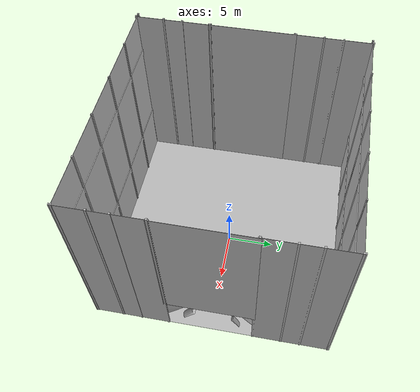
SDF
<?xml version="1.0" ?>
<sdf version="1.6">
    <model name="subt_tunnel_staging_area">
        <static>true</static>
        <link name="link">
            <collision name="collision1">
                <pose>-10 -10 20 0 0 0</pose>
                <geometry>
                    <box>
                        <size>0.1 0.1 0.1</size>
                    </box>
                </geometry>
            </collision>
            <collision name="collision2">
                <pose>10 10 20 0 0 0</pose>
                <geometry>
                    <box>
                        <size>0.1 0.1 0.1</size>
                    </box>
                </geometry>
            </collision>
            <!-- The flat area where the robots starts -->
            <visual name="plane_visual">
                <pose>-1.181716 0 0 0 0 0</pose>
                <geometry>
                    <mesh>
                        <uri>https://fuel.ignitionrobotics.org/1.0/openrobotics/models/subt_tunnel_staging_area/11/files/meshes/Asphalt_Plane.DAE</uri>
                    </mesh>
                </geometry>
            </visual>
            <visual name="fence_right1">
                <pose>8.818284 -12.4 0 1.5707 0 0</pose>
                <geometry>
                    <mesh>
                        <uri>https://fuel.ignitionrobotics.org/1.0/openrobotics/models/subt_tunnel_staging_area/11/files/meshes/Fence.dae</uri>
                        <scale>1 6.7 1</scale>
                    </mesh>
                </geometry>
            </visual>
            <visual name="fence_right2">
                <pose>3.818284 -12.4 0 1.5707 0 0</pose>
                <geometry>
                    <mesh>
                        <uri>https://fuel.ignitionrobotics.org/1.0/openrobotics/models/subt_tunnel_staging_area/11/files/meshes/Fence.dae</uri>
                        <scale>1 6.7 1</scale>
                    </mesh>
                </geometry>
            </visual>
            <visual name="fence_right3">
                <pose>-1.181716 -12.4 0 1.5707 0 0</pose>
                <geometry>
                    <mesh>
                        <uri>https://fuel.ignitionrobotics.org/1.0/openrobotics/models/subt_tunnel_staging_area/11/files/meshes/Fence.dae</uri>
                        <scale>1 6.7 1</scale>
                    </mesh>
                </geometry>
            </visual>
            <visual name="fence_right4">
                <pose>-6.181716 -12.4 0 1.5707 0 0</pose>
                <geometry>
                    <mesh>
                        <uri>https://fuel.ignitionrobotics.org/1.0/openrobotics/models/subt_tunnel_staging_area/11/files/meshes/Fence.dae</uri>
                        <scale>1 6.7 1</scale>
                    </mesh>
                </geometry>
            </visual>
            <visual name="fence_right5">
                <pose>-11.181716 -12.4 0 1.5707 0 0</pose>
                <geometry>
                    <mesh>
                        <uri>https://fuel.ignitionrobotics.org/1.0/openrobotics/models/subt_tunnel_staging_area/11/files/meshes/Fence.dae</uri>
                        <scale>1 6.7 1</scale>
                    </mesh>
                </geometry>
            </visual>
            <visual name="fence_left1">
                <pose>8.818284 12.4 0 1.5707 0 3.1415</pose>
                <geometry>
                    <mesh>
                        <uri>https://fuel.ignitionrobotics.org/1.0/openrobotics/models/subt_tunnel_staging_area/11/files/meshes/Fence.dae</uri>
                        <scale>1 6.7 1</scale>
                    </mesh>
                </geometry>
            </visual>
            <visual name="fence_left2">
                <pose>3.818284 12.4 0 1.5707 0 3.1415</pose>
                <geometry>
                    <mesh>
                        <uri>https://fuel.ignitionrobotics.org/1.0/openrobotics/models/subt_tunnel_staging_area/11/files/meshes/Fence.dae</uri>
                        <scale>1 6.7 1</scale>
                    </mesh>
                </geometry>
            </visual>
            <visual name="fence_left3">
                <pose>-1.181716 12.4 0 1.5707 0 3.1415</pose>
                <geometry>
                    <mesh>
                        <uri>https://fuel.ignitionrobotics.org/1.0/openrobotics/models/subt_tunnel_staging_area/11/files/meshes/Fence.dae</uri>
                        <scale>1 6.7 1</scale>
                    </mesh>
                </geometry>
            </visual>
            <visual name="fence_left4">
                <pose>-6.181716 12.4 0 1.5707 0 3.1415</pose>
                <geometry>
                    <mesh>
                        <uri>https://fuel.ignitionrobotics.org/1.0/openrobotics/models/subt_tunnel_staging_area/11/files/meshes/Fence.dae</uri>
                        <scale>1 6.7 1</scale>
                    </mesh>
                </geometry>
            </visual>
            <visual name="fence_left5">
                <pose>-11.181716 12.4 0 1.5707 0 3.1415</pose>
                <geometry>
                    <mesh>
                        <uri>https://fuel.ignitionrobotics.org/1.0/openrobotics/models/subt_tunnel_staging_area/11/files/meshes/Fence.dae</uri>
                        <scale>1 6.7 1</scale>
                    </mesh>
                </geometry>
            </visual>
            <visual name="fence_front_left1">
                <pose>11.3181716 10 0 1.5707 0 1.5707</pose>
                <geometry>
                    <mesh>
                        <uri>https://fuel.ignitionrobotics.org/1.0/openrobotics/models/subt_tunnel_staging_area/11/files/meshes/Fence.dae</uri>
                        <scale>1 6.7 1</scale>
                    </mesh>
                </geometry>
            </visual>
            <visual name="fence_front_left2">
                <pose>11.3181716 7 0 1.5707 0 1.5707</pose>
                <geometry>
                    <mesh>
                        <uri>https://fuel.ignitionrobotics.org/1.0/openrobotics/models/subt_tunnel_staging_area/11/files/meshes/Fence.dae</uri>
                        <scale>1 6.7 1</scale>
                    </mesh>
                </geometry>
            </visual>
            <visual name="fence_front_right1">
                <pose>11.3181716 -10 0 1.5707 0 1.5707</pose>
                <geometry>
                    <mesh>
                        <uri>https://fuel.ignitionrobotics.org/1.0/openrobotics/models/subt_tunnel_staging_area/11/files/meshes/Fence.dae</uri>
                        <scale>1 6.7 1</scale>
                    </mesh>
                </geometry>
            </visual>
            <visual name="fence_front_right2">
                <pose>11.3181716 -7 0 1.5707 0 1.5707</pose>
                <geometry>
                    <mesh>
                        <uri>https://fuel.ignitionrobotics.org/1.0/openrobotics/models/subt_tunnel_staging_area/11/files/meshes/Fence.dae</uri>
                        <scale>1 6.7 1</scale>
                    </mesh>
                </geometry>
            </visual>
            <visual name="fence_front_top">
                <pose>11.3181716 0 4.5 1.5707 0 1.5707</pose>
                <geometry>
                    <mesh>
                        <uri>https://fuel.ignitionrobotics.org/1.0/openrobotics/models/subt_tunnel_staging_area/11/files/meshes/Fence.dae</uri>
                        <scale>1.8 5.17 1</scale>
                    </mesh>
                </geometry>
            </visual>
            <visual name="fence_back_left1">
                <pose>-13.3181716 10 0 1.5707 0 1.5707</pose>
                <geometry>
                    <mesh>
                        <uri>https://fuel.ignitionrobotics.org/1.0/openrobotics/models/subt_tunnel_staging_area/11/files/meshes/Fence.dae</uri>
                        <scale>1 6.7 1</scale>
                    </mesh>
                </geometry>
            </visual>
            <visual name="fence_back_left2">
                <pose>-13.3181716 7 0 1.5707 0 1.5707</pose>
                <geometry>
                    <mesh>
                        <uri>https://fuel.ignitionrobotics.org/1.0/openrobotics/models/subt_tunnel_staging_area/11/files/meshes/Fence.dae</uri>
                        <scale>1 6.7 1</scale>
                    </mesh>
                </geometry>
            </visual>
            <visual name="fence_back_right1">
                <pose>-13.3181716 -10 0 1.5707 0 1.5707</pose>
                <geometry>
                    <mesh>
                        <uri>https://fuel.ignitionrobotics.org/1.0/openrobotics/models/subt_tunnel_staging_area/11/files/meshes/Fence.dae</uri>
                        <scale>1 6.7 1</scale>
                    </mesh>
                </geometry>
            </visual>
            <visual name="fence_back_right2">
                <pose>-13.3181716 -7 0 1.5707 0 1.5707</pose>
                <geometry>
                    <mesh>
                        <uri>https://fuel.ignitionrobotics.org/1.0/openrobotics/models/subt_tunnel_staging_area/11/files/meshes/Fence.dae</uri>
                        <scale>1 6.7 1</scale>
                    </mesh>
                </geometry>
            </visual>
            <visual name="fence_back_top">
                <pose>-13.3181716 0 0 1.5707 0 1.5707</pose>
                <geometry>
                    <mesh>
                        <uri>https://fuel.ignitionrobotics.org/1.0/openrobotics/models/subt_tunnel_staging_area/11/files/meshes/Fence.dae</uri>
                        <scale>1.8 6.7 1</scale>
                    </mesh>
                </geometry>
            </visual>
            <collision name="ceiling_collision">
                <pose>-1.181716 0 20.5 0 0 0</pose>
                <geometry>
                    <box>
                        <size>25 25 1</size>
                    </box>
                </geometry>
            </collision>
            <collision name="right_collision">
                <pose>-1.181716 -13 10.5 0 0 0</pose>
                <geometry>
                    <box>
                        <size>25 1 21</size>
                    </box>
                </geometry>
            </collision>
            <collision name="left_collision">
                <pose>-1.181716 13 10.5 0 0 0</pose>
                <geometry>
                    <box>
                        <size>25 1 21</size>
                    </box>
                </geometry>
            </collision>
            <collision name="rear_collision">
                <pose>-13.6181716 0 10.5 0 0 0</pose>
                <geometry>
                    <box>
                        <size>1 25 21</size>
                    </box>
                </geometry>
            </collision>
            <collision name="front_left_collision">
                <pose>11.3181716 8.75 10.5 0 0 0</pose>
                <geometry>
                    <box>
                        <size>1 9.5 21</size>
                    </box>
                </geometry>
            </collision>
            <collision name="front_right_collision">
                <pose>11.3181716 -8.75 10.5 0 0 0</pose>
                <geometry>
                    <box>
                        <size>1 9.5 21</size>
                    </box>
                </geometry>
            </collision>
            <collision name="front_top_collision">
                <pose>11.3181716 0 12.5 0 0 0</pose>
                <geometry>
                    <box>
                        <size>1 8 15</size>
                    </box>
                </geometry>
            </collision>
            <collision name="plane_collision">
                <pose>-1.181716 0 -0.502 0 0 0</pose>
                <geometry>
                    <box>
                        <size>25 25 1</size>
                    </box>
                </geometry>
            </collision>
            <!-- Entry to the tunnel -->
            <collision name="collision">
                <pose>10 0 -0.001 0 0 -1.5707963267948966</pose>
                <geometry>
                    <mesh>
                        <scale>0.93 0.93 0.93</scale>
                        <uri>https://fuel.ignitionrobotics.org/1.0/openrobotics/models/subt_tunnel_staging_area/11/files/meshes/Entrance.dae</uri>
                    </mesh>
                </geometry>
            </collision>
            <visual name="visual">
                <pose>10 0 -0.001 0 0 -1.5707963267948966</pose>
                <geometry>
                    <mesh>
                        <scale>0.93 0.93 0.93</scale>
                        <uri>https://fuel.ignitionrobotics.org/1.0/openrobotics/models/subt_tunnel_staging_area/11/files/meshes/Entrance.dae</uri>
                    </mesh>
                </geometry>
            </visual>
        </link>
        <plugin filename="libignition-gazebo-performer-detector-system.so" name="ignition::gazebo::systems::PerformerDetector">
            <topic>/subt_performer_detector</topic>
            <pose>0 0 15 0 0 0</pose>
            <geometry>
                <box>
                    <size>20 26 30</size>
                </box>
            </geometry>
        </plugin>
    </model>
</sdf>
